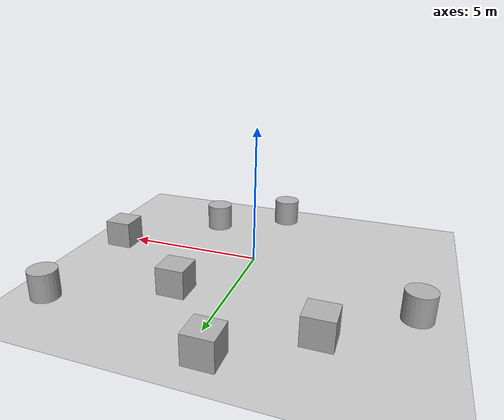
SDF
<?xml version="1.0"?>
<sdf version="1.10">
	<world name="car_world">
		<physics name="1ms" type="ignored">
			<max_step_size>0.001</max_step_size>
			<real_time_factor>1.0</real_time_factor>
		</physics>
		<plugin
			filename="gz-sim-physics-system"
			name="gz::sim::systems::Physics">
		</plugin>
                <plugin name='gz::sim::systems::Sensors'
                        filename='gz-sim-sensors-system'>
                        <render_engine>ogre2</render_engine>
                </plugin>
		<plugin
			filename="gz-sim-user-commands-system"
			name="gz::sim::systems::UserCommands">
		</plugin>
		<plugin
			filename="gz-sim-scene-broadcaster-system"
			name="gz::sim::systems::SceneBroadcaster">
		</plugin>

		<light type="directional" name="sun">
			<cast_shadows>true</cast_shadows>
			<pose>0 0 10 0 0 0</pose>
			<diffuse>0.8 0.8 0.8 1</diffuse>
			<specular>0.2 0.2 0.2 1</specular>
			<attenuation>
				<range>1000</range>
				<constant>0.9</constant>
				<linear>0.01</linear>
				<quadratic>0.001</quadratic>
			</attenuation>
			<direction>-0.5 0.1 -0.9</direction>
		</light>

		<model name="ground_plane">
			<static>true</static>
			<link name="link">
				<collision name="collision">
					<geometry>
						<plane>
							<normal>0 0 1</normal>
						</plane>
					</geometry>
				</collision>
				<visual name="visual">
					<geometry>
						<plane>
							<normal>0 0 1</normal>
							<size>100 100</size>
						</plane>
					</geometry>
					<material>
						<ambient>0.8 0.8 0.8 1</ambient>
						<diffuse>0.8 0.8 0.8 1</diffuse>
						<specular>0.8 0.8 0.8 1</specular>
					</material>
				</visual>
			</link>
		</model>

                <model name='box'>
                        <pose>1.7327025648308272 3.1486959251917312 0.49999999990199806
                                6.2287739151293738e-22 9.3279666454713669e-22
                                -3.6315533669320137e-22</pose>
                        <link name='box_link'>
                                <inertial>
                                        <inertia>
                                                <ixx>0.16666</ixx>
                                                <ixy>0</ixy>
                                                <ixz>0</ixz>
                                                <iyy>0.16666</iyy>
                                                <iyz>0</iyz>
                                                <izz>0.16666</izz>
                                        </inertia>
                                        <mass>1</mass>
                                        <pose>0 0 0 0 0 0</pose>
                                </inertial>
                                <collision name='box_collision'>
                                        <geometry>
                                                <box>
                                                        <size>1 1 1</size>
                                                </box>
                                        </geometry>
                                        <surface>
                                                <friction>
                                                        <ode />
                                                </friction>
                                                <bounce />
                                                <contact />
                                        </surface>
                                </collision>
                                <visual name='box_visual'>
                                        <geometry>
                                                <box>
                                                        <size>1 1 1</size>
                                                </box>
                                        </geometry>
                                        <material>
                                                <ambient>0.300000012 0.300000012 0.300000012 1</ambient>
                                                <diffuse>0.699999988 0.699999988 0.699999988 1</diffuse>
                                                <specular>1 1 1 1</specular>
                                        </material>
                                </visual>
                                <pose>0 0 0 0 0 0</pose>
                                <enable_wind>false</enable_wind>
                        </link>
                        <static>false</static>
                        <self_collide>false</self_collide>
                </model>
                <model name='cylinder'>
                        <pose>2.3721557270816653 -2.5415892293325939 0.49999942638036005
                                1.4996353405151414e-20 5.0365929802108869e-20
                                -1.1984758918357792e-20</pose>
                        <link name='cylinder_link'>
                                <inertial>
                                        <inertia>
                                                <ixx>0.14580000000000001</ixx>
                                                <ixy>0</ixy>
                                                <ixz>0</ixz>
                                                <iyy>0.14580000000000001</iyy>
                                                <iyz>0</iyz>
                                                <izz>0.125</izz>
                                        </inertia>
                                        <mass>1</mass>
                                        <pose>0 0 0 0 0 0</pose>
                                </inertial>
                                <collision name='cylinder_collision'>
                                        <geometry>
                                                <cylinder>
                                                        <radius>0.5</radius>
                                                        <length>1</length>
                                                </cylinder>
                                        </geometry>
                                        <surface>
                                                <friction>
                                                        <ode />
                                                </friction>
                                                <bounce />
                                                <contact />
                                        </surface>
                                </collision>
                                <visual name='cylinder_visual'>
                                        <geometry>
                                                <cylinder>
                                                        <radius>0.5</radius>
                                                        <length>1</length>
                                                </cylinder>
                                        </geometry>
                                        <material>
                                                <ambient>0.300000012 0.300000012 0.300000012 1</ambient>
                                                <diffuse>0.699999988 0.699999988 0.699999988 1</diffuse>
                                                <specular>1 1 1 1</specular>
                                        </material>
                                </visual>
                                <pose>0 0 0 0 0 0</pose>
                                <enable_wind>false</enable_wind>
                        </link>
                        <static>false</static>
                        <self_collide>false</self_collide>
                </model>
                <model name='box_0'>
                        <pose>-3.2876218504211057 4.2249343614006563 0.49999999990199806
                                6.2287739151293738e-22 9.3279666454713669e-22
                                -3.6315533669320137e-22</pose>
                        <link name='box_link'>
                                <inertial>
                                        <inertia>
                                                <ixx>0.16666</ixx>
                                                <ixy>0</ixy>
                                                <ixz>0</ixz>
                                                <iyy>0.16666</iyy>
                                                <iyz>0</iyz>
                                                <izz>0.16666</izz>
                                        </inertia>
                                        <mass>1</mass>
                                        <pose>0 0 0 0 0 0</pose>
                                </inertial>
                                <collision name='box_collision'>
                                        <geometry>
                                                <box>
                                                        <size>1 1 1</size>
                                                </box>
                                        </geometry>
                                        <surface>
                                                <friction>
                                                        <ode />
                                                </friction>
                                                <bounce />
                                                <contact />
                                        </surface>
                                </collision>
                                <visual name='box_visual'>
                                        <geometry>
                                                <box>
                                                        <size>1 1 1</size>
                                                </box>
                                        </geometry>
                                        <material>
                                                <ambient>0.300000012 0.300000012 0.300000012 1</ambient>
                                                <diffuse>0.699999988 0.699999988 0.699999988 1</diffuse>
                                                <specular>1 1 1 1</specular>
                                        </material>
                                </visual>
                                <pose>0 0 0 0 0 0</pose>
                                <enable_wind>false</enable_wind>
                        </link>
                        <static>false</static>
                        <self_collide>false</self_collide>
                </model>
                <model name='cylinder_0'>
                        <pose>-0.1956326742009491 -4.1373472767269304 0.49999942638036005
                                1.0821340785120786e-19 9.409659750215992e-20 -1.1817425079826505e-22</pose>
                        <link name='cylinder_link'>
                                <inertial>
                                        <inertia>
                                                <ixx>0.14580000000000001</ixx>
                                                <ixy>0</ixy>
                                                <ixz>0</ixz>
                                                <iyy>0.14580000000000001</iyy>
                                                <iyz>0</iyz>
                                                <izz>0.125</izz>
                                        </inertia>
                                        <mass>1</mass>
                                        <pose>0 0 0 0 0 0</pose>
                                </inertial>
                                <collision name='cylinder_collision'>
                                        <geometry>
                                                <cylinder>
                                                        <radius>0.5</radius>
                                                        <length>1</length>
                                                </cylinder>
                                        </geometry>
                                        <surface>
                                                <friction>
                                                        <ode />
                                                </friction>
                                                <bounce />
                                                <contact />
                                        </surface>
                                </collision>
                                <visual name='cylinder_visual'>
                                        <geometry>
                                                <cylinder>
                                                        <radius>0.5</radius>
                                                        <length>1</length>
                                                </cylinder>
                                        </geometry>
                                        <material>
                                                <ambient>0.300000012 0.300000012 0.300000012 1</ambient>
                                                <diffuse>0.699999988 0.699999988 0.699999988 1</diffuse>
                                                <specular>1 1 1 1</specular>
                                        </material>
                                </visual>
                                <pose>0 0 0 0 0 0</pose>
                                <enable_wind>false</enable_wind>
                        </link>
                        <static>false</static>
                        <self_collide>false</self_collide>
                </model>
                <model name='cylinder_1'>
                        <pose>-5.8697734084076449 2.1214756097266485 0.49999942638036005
                                6.561274169120514e-20 -8.5153813476362381e-20 1.6160129123050158e-20</pose>
                        <link name='cylinder_link'>
                                <inertial>
                                        <inertia>
                                                <ixx>0.14580000000000001</ixx>
                                                <ixy>0</ixy>
                                                <ixz>0</ixz>
                                                <iyy>0.14580000000000001</iyy>
                                                <iyz>0</iyz>
                                                <izz>0.125</izz>
                                        </inertia>
                                        <mass>1</mass>
                                        <pose>0 0 0 0 0 0</pose>
                                </inertial>
                                <collision name='cylinder_collision'>
                                        <geometry>
                                                <cylinder>
                                                        <radius>0.5</radius>
                                                        <length>1</length>
                                                </cylinder>
                                        </geometry>
                                        <surface>
                                                <friction>
                                                        <ode />
                                                </friction>
                                                <bounce />
                                                <contact />
                                        </surface>
                                </collision>
                                <visual name='cylinder_visual'>
                                        <geometry>
                                                <cylinder>
                                                        <radius>0.5</radius>
                                                        <length>1</length>
                                                </cylinder>
                                        </geometry>
                                        <material>
                                                <ambient>0.300000012 0.300000012 0.300000012 1</ambient>
                                                <diffuse>0.699999988 0.699999988 0.699999988 1</diffuse>
                                                <specular>1 1 1 1</specular>
                                        </material>
                                </visual>
                                <pose>0 0 0 0 0 0</pose>
                                <enable_wind>false</enable_wind>
                        </link>
                        <static>false</static>
                        <self_collide>false</self_collide>
                </model>
                <model name='box_1'>
                        <pose>5.3966540463252173 0.35800930487055693 0.49999999990199806
                                6.2287739151293738e-22 9.3279666454713669e-22
                                -3.6315533669320137e-22</pose>
                        <link name='box_link'>
                                <inertial>
                                        <inertia>
                                                <ixx>0.16666</ixx>
                                                <ixy>0</ixy>
                                                <ixz>0</ixz>
                                                <iyy>0.16666</iyy>
                                                <iyz>0</iyz>
                                                <izz>0.16666</izz>
                                        </inertia>
                                        <mass>1</mass>
                                        <pose>0 0 0 0 0 0</pose>
                                </inertial>
                                <collision name='box_collision'>
                                        <geometry>
                                                <box>
                                                        <size>1 1 1</size>
                                                </box>
                                        </geometry>
                                        <surface>
                                                <friction>
                                                        <ode />
                                                </friction>
                                                <bounce />
                                                <contact />
                                        </surface>
                                </collision>
                                <visual name='box_visual'>
                                        <geometry>
                                                <box>
                                                        <size>1 1 1</size>
                                                </box>
                                        </geometry>
                                        <material>
                                                <ambient>0.300000012 0.300000012 0.300000012 1</ambient>
                                                <diffuse>0.699999988 0.699999988 0.699999988 1</diffuse>
                                                <specular>1 1 1 1</specular>
                                        </material>
                                </visual>
                                <pose>0 0 0 0 0 0</pose>
                                <enable_wind>false</enable_wind>
                        </link>
                        <static>false</static>
                        <self_collide>false</self_collide>
                </model>
                <model name='cylinder_2'>
                        <pose>5.5717495933602059 5.0241297422116764 0.49999942638036005
                                2.8062591342686179e-19 -1.9969249653193573e-19
                                -3.133845470380914e-20</pose>
                        <link name='cylinder_link'>
                                <inertial>
                                        <inertia>
                                                <ixx>0.14580000000000001</ixx>
                                                <ixy>0</ixy>
                                                <ixz>0</ixz>
                                                <iyy>0.14580000000000001</iyy>
                                                <iyz>0</iyz>
                                                <izz>0.125</izz>
                                        </inertia>
                                        <mass>1</mass>
                                        <pose>0 0 0 0 0 0</pose>
                                </inertial>
                                <collision name='cylinder_collision'>
                                        <geometry>
                                                <cylinder>
                                                        <radius>0.5</radius>
                                                        <length>1</length>
                                                </cylinder>
                                        </geometry>
                                        <surface>
                                                <friction>
                                                        <ode />
                                                </friction>
                                                <bounce />
                                                <contact />
                                        </surface>
                                </collision>
                                <visual name='cylinder_visual'>
                                        <geometry>
                                                <cylinder>
                                                        <radius>0.5</radius>
                                                        <length>1</length>
                                                </cylinder>
                                        </geometry>
                                        <material>
                                                <ambient>0.300000012 0.300000012 0.300000012 1</ambient>
                                                <diffuse>0.699999988 0.699999988 0.699999988 1</diffuse>
                                                <specular>1 1 1 1</specular>
                                        </material>
                                </visual>
                                <pose>0 0 0 0 0 0</pose>
                                <enable_wind>false</enable_wind>
                        </link>
                        <static>false</static>
                        <self_collide>false</self_collide>
                </model>
                <model name='box_2'>
                        <pose>-0.56329496489536623 6.1423876653937475 0.49999999990199806
                                6.2287739151293738e-22 9.3279666454713669e-22
                                -3.6315533669320137e-22</pose>
                        <link name='box_link'>
                                <inertial>
                                        <inertia>
                                                <ixx>0.16666</ixx>
                                                <ixy>0</ixy>
                                                <ixz>0</ixz>
                                                <iyy>0.16666</iyy>
                                                <iyz>0</iyz>
                                                <izz>0.16666</izz>
                                        </inertia>
                                        <mass>1</mass>
                                        <pose>0 0 0 0 0 0</pose>
                                </inertial>
                                <collision name='box_collision'>
                                        <geometry>
                                                <box>
                                                        <size>1 1 1</size>
                                                </box>
                                        </geometry>
                                        <surface>
                                                <friction>
                                                        <ode />
                                                </friction>
                                                <bounce />
                                                <contact />
                                        </surface>
                                </collision>
                                <visual name='box_visual'>
                                        <geometry>
                                                <box>
                                                        <size>1 1 1</size>
                                                </box>
                                        </geometry>
                                        <material>
                                                <ambient>0.300000012 0.300000012 0.300000012 1</ambient>
                                                <diffuse>0.699999988 0.699999988 0.699999988 1</diffuse>
                                                <specular>1 1 1 1</specular>
                                        </material>
                                </visual>
                                <pose>0 0 0 0 0 0</pose>
                                <enable_wind>false</enable_wind>
                        </link>
                        <static>false</static>
                        <self_collide>false</self_collide>
                </model>
	</world>
</sdf>
